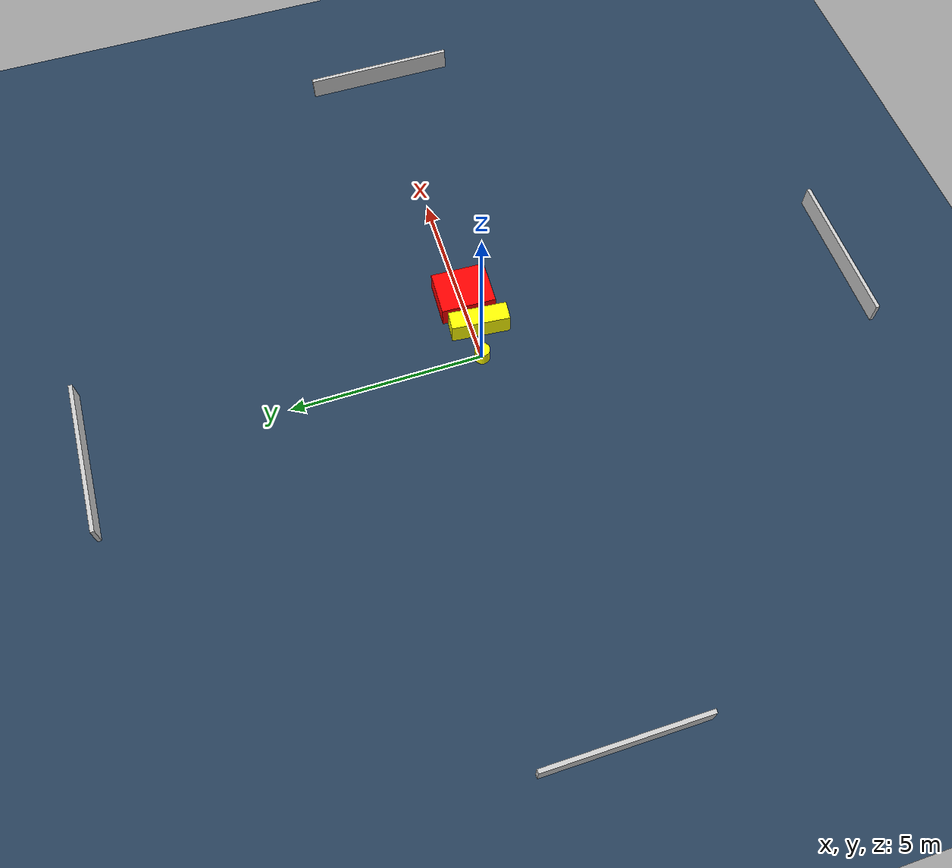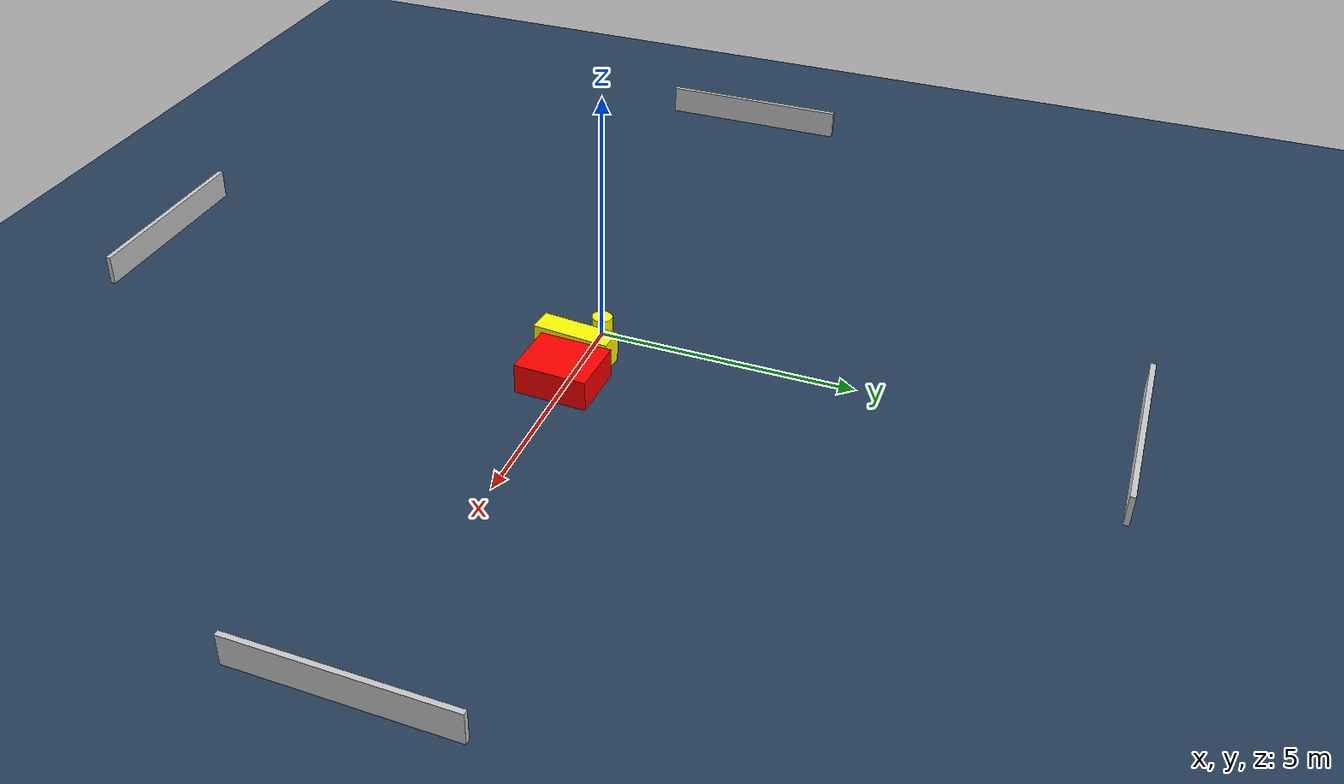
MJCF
<?xml version="1.0" ?>
<mujoco model="generated_environment">
  <option timestep="0.01" integrator="RK4" cone="elliptic"/>
  <default>
    <geom density="1"/>
  </default>
  <asset>
    <texture builtin="gradient" height="3072" name="skybox" rgb1="0.3 0.5 0.7" rgb2="0 0 0" type="skybox" width="512"/>
    <texture builtin="checker" height="300" name="groundplane" rgb1="0.2 0.3 0.4" rgb2="0.1 0.2 0.3" type="2d" width="300"/>
    <material name="groundplane" reflectance="0.2" texrepeat="5 5" texture="groundplane"/>
  </asset>
  <worldbody>
    <light dir="0 0 -1" directional="true" pos="0 0 1.5"/>
    <geom condim="3" friction="0.5 0.005 0.001" material="groundplane" name="floor" pos="0 0 0" size="0 0 0.05" type="plane"/>
    <body name="walls">
      <geom name="wall_1" condim="4" pos="-10.0 0.0 0.3" rgba="0.800000011920929 0.800000011920929 0.800000011920929 1.0" size="0.05 2.0 0.3" type="box"/>
      <geom name="wall_2" condim="4" pos="10.0 0.0 0.3" rgba="0.800000011920929 0.800000011920929 0.800000011920929 1.0" size="0.05 2.0 0.3" type="box"/>
      <geom name="wall_3" condim="4" pos="0.0 -10.0 0.3" rgba="0.800000011920929 0.800000011920929 0.800000011920929 1.0" size="2.0 0.05 0.3" type="box"/>
      <geom name="wall_4" condim="4" pos="0.0 10.0 0.3" rgba="0.800000011920929 0.800000011920929 0.800000011920929 1.0" size="2.0 0.05 0.3" type="box"/>
    </body>
    <body name="robot">
      <joint name="joint_x" type="slide" pos="0 0 0" axis="1 0 0"/>
      <joint name="joint_y" type="slide" pos="0 0 0" axis="0 1 0"/>
      <geom name="robot" type="cylinder" pos="0.0 0.0 0.2" size="0.2 0.2 0.0" mass="5.0" friction="1.0 0.005 0.0001" condim="4" rgba="1.0 1.0 0.0 1.0"/>
    </body>
    <body name="obstacle_1_movable">
      <geom name="obstacle_1_movable" condim="4" pos="0.867308089752623 -0.19248794376906442 0.3" euler="0 0 84.99043474384172" friction="0.0 0.005 0.001" rgba="1.0 1.0 0.0 1.0" size="0.7618704377850392 0.24475635249803002 0.3" type="box" mass="0.1"/>
      <joint type="free"/>
    </body>
    <body name="obstacle_2_static">
      <geom name="obstacle_2_static" condim="4" pos="1.8078739338926497 -0.05756821201896362 0.3" euler="0 0 267.937215638464" friction="0.0 0.005 0.001" rgba="1.0 0.0 0.0 1.0" size="0.7104069482604844 0.5796108846340293 0.3" type="box"/>
    </body>
  </worldbody>
  <actuator>
    <motor name="actuator_x" joint="joint_x" gear="1" ctrlrange="-1 1"/>
    <motor name="actuator_y" joint="joint_y" gear="1" ctrlrange="-1 1"/>
  </actuator>
</mujoco>
